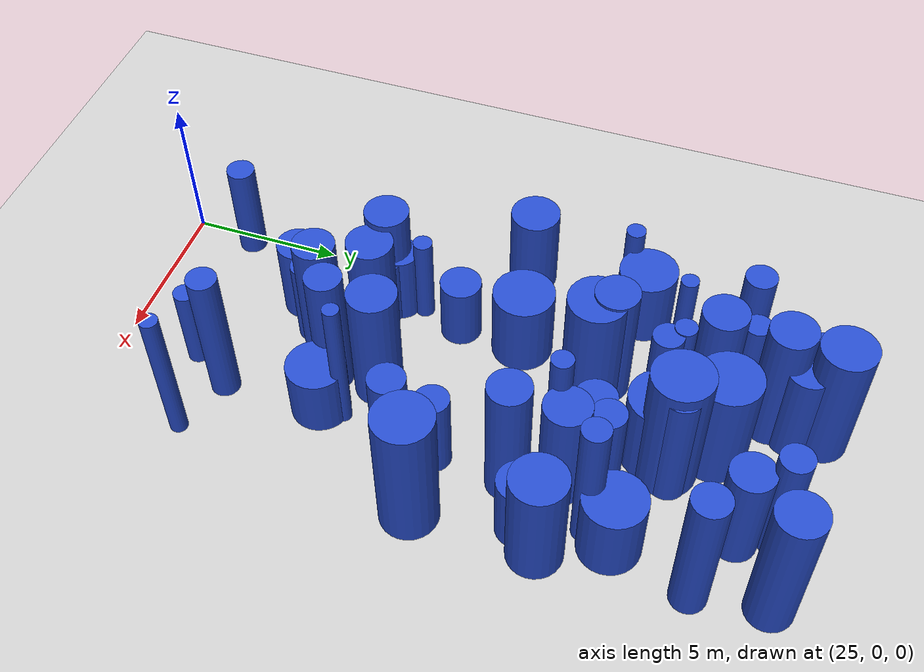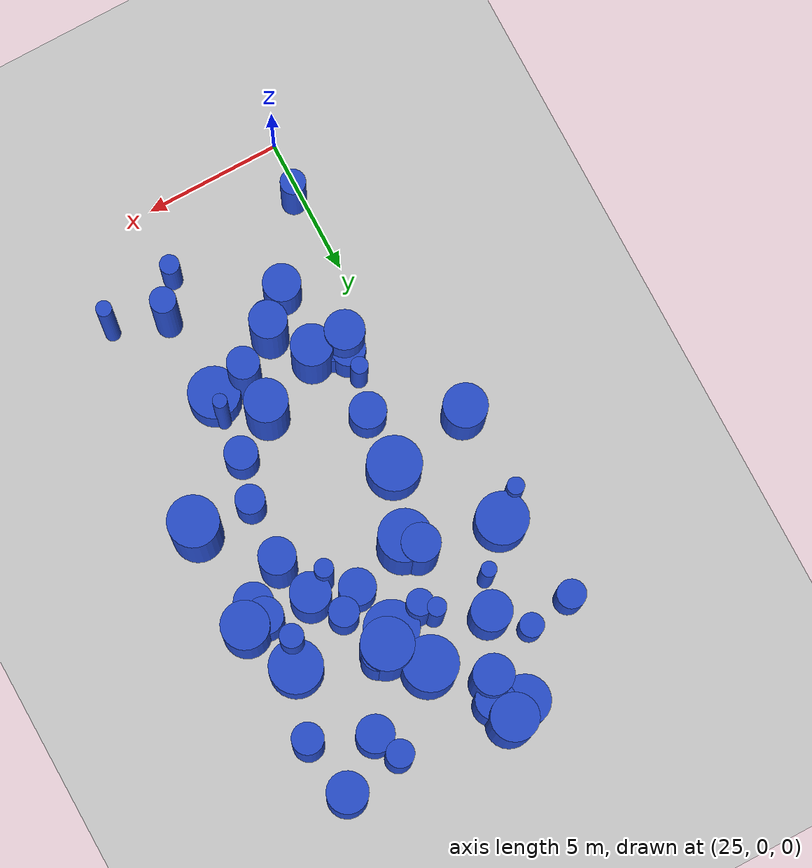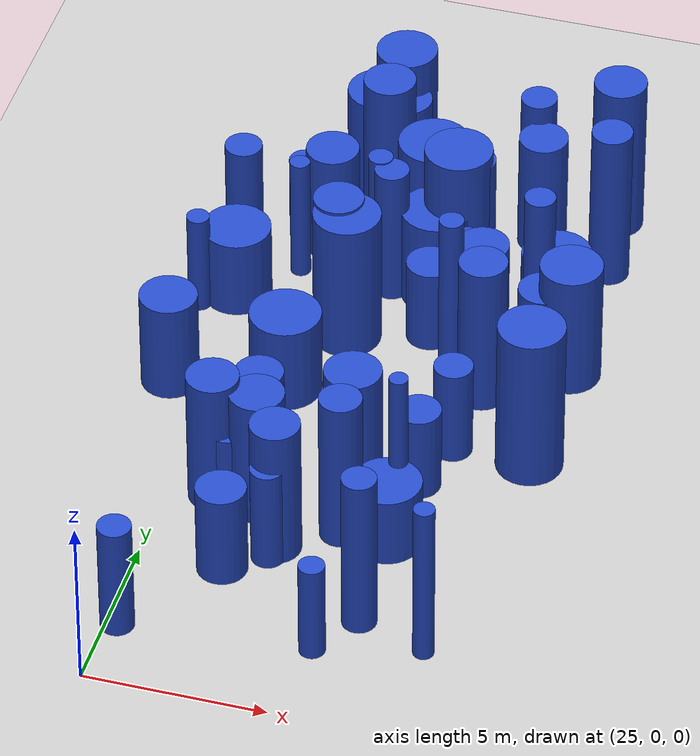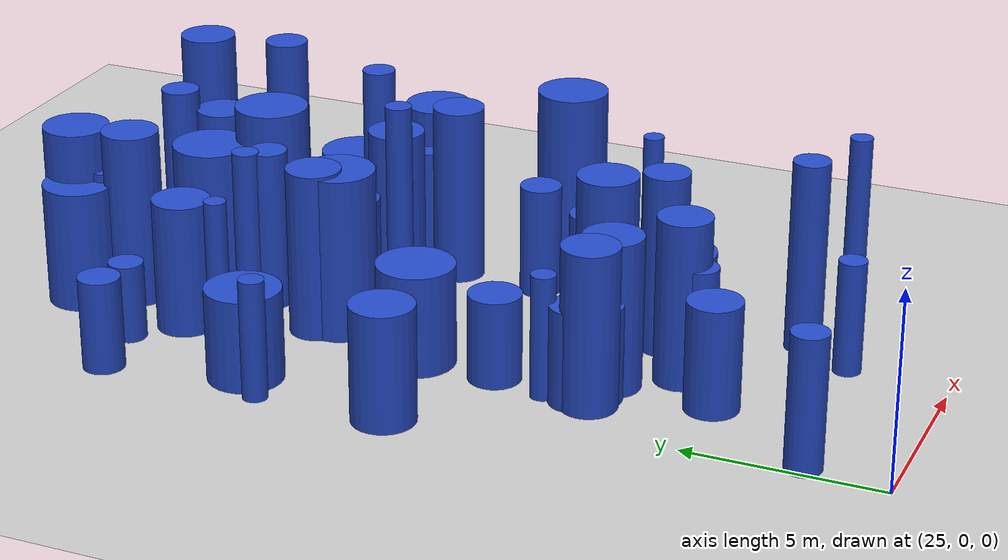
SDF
<sdf version="1.6">
 <world name="default">
  <model name="ground_plane">
   <static>1</static>
   <link name="link">
    <collision name="collision">
     <geometry><plane><normal>0 0 1</normal><size>100 100</size></plane></geometry>
     <surface><friction><ode><mu>100</mu><mu2>50</mu2></ode></friction></surface>
    </collision>
    <visual name="visual">
     <cast_shadows>0</cast_shadows>
     <geometry><plane><normal>0 0 1</normal><size>100 100</size></plane></geometry>
     <material>
      <script><uri>file://media/materials/scripts/gazebo.material</uri><name>Gazebo/Grey</name></script>
     </material>
    </visual>
   </link>
  </model>
  <model name="6">
   <static>0</static>
   <link name="link">
    <inertial>
     <mass>2</mass>
     <inertia><ixx>4.21567</ixx><ixy>0</ixy><ixz>0</ixz><iyy>4.21567</iyy><iyz>0</iyz><izz>0.18322</izz></inertia>
    </inertial>
    <collision name="collision">
     <geometry><cylinder><length>4.97437</length><radius>0.428042</radius></cylinder></geometry>
     <surface><contact><collide_without_contact>1</collide_without_contact></contact></surface>
    </collision>
    <visual name="visual">
     <geometry><cylinder><length>4.97437</length><radius>0.428042</radius></cylinder></geometry>
     <material>
      <script><uri>file://media/materials/scripts/gazebo.material</uri><name>Gazebo/Blue</name></script>
     </material>
    </visual>
    <gravity>0</gravity>
   </link>
   <pose>32.8393 16.173 2.48719 0 -0 0</pose>
  </model>
  <model name="12">
   <static>0</static>
   <link name="link">
    <inertial>
     <mass>2</mass>
     <inertia><ixx>2.16856</ixx><ixy>0</ixy><ixz>0</ixz><iyy>2.16856</iyy><iyz>0</iyz><izz>0.502649</izz></inertia>
    </inertial>
    <collision name="collision">
     <geometry><cylinder><length>3.39167</length><radius>0.708978</radius></cylinder></geometry>
     <surface><contact><collide_without_contact>1</collide_without_contact></contact></surface>
    </collision>
    <visual name="visual">
     <geometry><cylinder><length>3.39167</length><radius>0.708978</radius></cylinder></geometry>
     <material>
      <script><uri>file://media/materials/scripts/gazebo.material</uri><name>Gazebo/Blue</name></script>
     </material>
    </visual>
    <gravity>0</gravity>
   </link>
   <pose>27.6973 21.2651 1.69583 0 -0 0</pose>
  </model>
  <model name="16">
   <static>0</static>
   <link name="link">
    <inertial>
     <mass>2</mass>
     <inertia><ixx>1.16291</ixx><ixy>0</ixy><ixz>0</ixz><iyy>1.16291</iyy><iyz>0</iyz><izz>0.875446</izz></inertia>
    </inertial>
    <collision name="collision">
     <geometry><cylinder><length>2.08593</length><radius>0.935653</radius></cylinder></geometry>
     <surface><contact><collide_without_contact>1</collide_without_contact></contact></surface>
    </collision>
    <visual name="visual">
     <geometry><cylinder><length>2.08593</length><radius>0.935653</radius></cylinder></geometry>
     <material>
      <script><uri>file://media/materials/scripts/gazebo.material</uri><name>Gazebo/Blue</name></script>
     </material>
    </visual>
    <gravity>0</gravity>
   </link>
   <pose>31.1404 7.15658 1.04296 0 -0 0</pose>
  </model>
  <model name="23">
   <static>0</static>
   <link name="link">
    <inertial>
     <mass>2</mass>
     <inertia><ixx>2.07027</ixx><ixy>0</ixy><ixz>0</ixz><iyy>2.07027</iyy><iyz>0</iyz><izz>0.208934</izz></inertia>
    </inertial>
    <collision name="collision">
     <geometry><cylinder><length>3.43436</length><radius>0.457093</radius></cylinder></geometry>
     <surface><contact><collide_without_contact>1</collide_without_contact></contact></surface>
    </collision>
    <visual name="visual">
     <geometry><cylinder><length>3.43436</length><radius>0.457093</radius></cylinder></geometry>
     <material>
      <script><uri>file://media/materials/scripts/gazebo.material</uri><name>Gazebo/Blue</name></script>
     </material>
    </visual>
    <gravity>0</gravity>
   </link>
   <pose>25.3111 2.1227 1.71718 0 -0 0</pose>
  </model>
  <model name="26">
   <static>0</static>
   <link name="link">
    <inertial>
     <mass>2</mass>
     <inertia><ixx>1.56501</ixx><ixy>0</ixy><ixz>0</ixz><iyy>1.56501</iyy><iyz>0</iyz><izz>0.284058</izz></inertia>
    </inertial>
    <collision name="collision">
     <geometry><cylinder><length>2.92197</length><radius>0.532971</radius></cylinder></geometry>
     <surface><contact><collide_without_contact>1</collide_without_contact></contact></surface>
    </collision>
    <visual name="visual">
     <geometry><cylinder><length>2.92197</length><radius>0.532971</radius></cylinder></geometry>
     <material>
      <script><uri>file://media/materials/scripts/gazebo.material</uri><name>Gazebo/Blue</name></script>
     </material>
    </visual>
    <gravity>0</gravity>
   </link>
   <pose>31.8249 11.1624 1.46098 0 -0 0</pose>
  </model>
  <model name="28">
   <static>0</static>
   <link name="link">
    <inertial>
     <mass>2</mass>
     <inertia><ixx>2.79456</ixx><ixy>0</ixy><ixz>0</ixz><iyy>2.79456</iyy><iyz>0</iyz><izz>0.744168</izz></inertia>
    </inertial>
    <collision name="collision">
     <geometry><cylinder><length>3.81246</length><radius>0.862652</radius></cylinder></geometry>
     <surface><contact><collide_without_contact>1</collide_without_contact></contact></surface>
    </collision>
    <visual name="visual">
     <geometry><cylinder><length>3.81246</length><radius>0.862652</radius></cylinder></geometry>
     <material>
      <script><uri>file://media/materials/scripts/gazebo.material</uri><name>Gazebo/Blue</name></script>
     </material>
    </visual>
    <gravity>0</gravity>
   </link>
   <pose>34.0348 15.0048 1.90623 0 -0 0</pose>
  </model>
  <model name="37">
   <static>0</static>
   <link name="link">
    <inertial>
     <mass>2</mass>
     <inertia><ixx>1.49639</ixx><ixy>0</ixy><ixz>0</ixz><iyy>1.49639</iyy><iyz>0</iyz><izz>0.93857</izz></inertia>
    </inertial>
    <collision name="collision">
     <geometry><cylinder><length>2.48246</length><radius>0.968798</radius></cylinder></geometry>
     <surface><contact><collide_without_contact>1</collide_without_contact></contact></surface>
    </collision>
    <visual name="visual">
     <geometry><cylinder><length>2.48246</length><radius>0.968798</radius></cylinder></geometry>
     <material>
      <script><uri>file://media/materials/scripts/gazebo.material</uri><name>Gazebo/Blue</name></script>
     </material>
    </visual>
    <gravity>0</gravity>
   </link>
   <pose>33.1347 16.9677 1.24123 0 -0 0</pose>
  </model>
  <model name="40">
   <static>0</static>
   <link name="link">
    <inertial>
     <mass>2</mass>
     <inertia><ixx>3.64768</ixx><ixy>0</ixy><ixz>0</ixz><iyy>3.64768</iyy><iyz>0</iyz><izz>0.726786</izz></inertia>
    </inertial>
    <collision name="collision">
     <geometry><cylinder><length>4.43911</length><radius>0.852518</radius></cylinder></geometry>
     <surface><contact><collide_without_contact>1</collide_without_contact></contact></surface>
    </collision>
    <visual name="visual">
     <geometry><cylinder><length>4.43911</length><radius>0.852518</radius></cylinder></geometry>
     <material>
      <script><uri>file://media/materials/scripts/gazebo.material</uri><name>Gazebo/Blue</name></script>
     </material>
    </visual>
    <gravity>0</gravity>
   </link>
   <pose>27.4642 22.1166 2.21956 0 -0 0</pose>
  </model>
  <model name="47">
   <static>0</static>
   <link name="link">
    <inertial>
     <mass>2</mass>
     <inertia><ixx>3.1155</ixx><ixy>0</ixy><ixz>0</ixz><iyy>3.1155</iyy><iyz>0</iyz><izz>0.511303</izz></inertia>
    </inertial>
    <collision name="collision">
     <geometry><cylinder><length>4.14235</length><radius>0.715055</radius></cylinder></geometry>
     <surface><contact><collide_without_contact>1</collide_without_contact></contact></surface>
    </collision>
    <visual name="visual">
     <geometry><cylinder><length>4.14235</length><radius>0.715055</radius></cylinder></geometry>
     <material>
      <script><uri>file://media/materials/scripts/gazebo.material</uri><name>Gazebo/Blue</name></script>
     </material>
    </visual>
    <gravity>0</gravity>
   </link>
   <pose>26.2492 7.67174 2.07118 0 -0 0</pose>
  </model>
  <model name="66">
   <static>0</static>
   <link name="link">
    <inertial>
     <mass>2</mass>
     <inertia><ixx>1.32349</ixx><ixy>0</ixy><ixz>0</ixz><iyy>1.32349</iyy><iyz>0</iyz><izz>0.364815</izz></inertia>
    </inertial>
    <collision name="collision">
     <geometry><cylinder><length>2.61658</length><radius>0.603999</radius></cylinder></geometry>
     <surface><contact><collide_without_contact>1</collide_without_contact></contact></surface>
    </collision>
    <visual name="visual">
     <geometry><cylinder><length>2.61658</length><radius>0.603999</radius></cylinder></geometry>
     <material>
      <script><uri>file://media/materials/scripts/gazebo.material</uri><name>Gazebo/Blue</name></script>
     </material>
    </visual>
    <gravity>0</gravity>
   </link>
   <pose>31.3296 9.54668 1.30829 0 -0 0</pose>
  </model>
  <model name="77">
   <static>0</static>
   <link name="link">
    <inertial>
     <mass>2</mass>
     <inertia><ixx>3.04826</ixx><ixy>0</ixy><ixz>0</ixz><iyy>3.04826</iyy><iyz>0</iyz><izz>0.228469</izz></inertia>
    </inertial>
    <collision name="collision">
     <geometry><cylinder><length>4.19573</length><radius>0.477984</radius></cylinder></geometry>
     <surface><contact><collide_without_contact>1</collide_without_contact></contact></surface>
    </collision>
    <visual name="visual">
     <geometry><cylinder><length>4.19573</length><radius>0.477984</radius></cylinder></geometry>
     <material>
      <script><uri>file://media/materials/scripts/gazebo.material</uri><name>Gazebo/Blue</name></script>
     </material>
    </visual>
    <gravity>0</gravity>
   </link>
   <pose>28.4299 17.1628 2.09787 0 -0 0</pose>
  </model>
  <model name="90">
   <static>0</static>
   <link name="link">
    <inertial>
     <mass>2</mass>
     <inertia><ixx>2.81916</ixx><ixy>0</ixy><ixz>0</ixz><iyy>2.81916</iyy><iyz>0</iyz><izz>0.532219</izz></inertia>
    </inertial>
    <collision name="collision">
     <geometry><cylinder><length>3.91386</length><radius>0.729533</radius></cylinder></geometry>
     <surface><contact><collide_without_contact>1</collide_without_contact></contact></surface>
    </collision>
    <visual name="visual">
     <geometry><cylinder><length>3.91386</length><radius>0.729533</radius></cylinder></geometry>
     <material>
      <script><uri>file://media/materials/scripts/gazebo.material</uri><name>Gazebo/Blue</name></script>
     </material>
    </visual>
    <gravity>0</gravity>
   </link>
   <pose>31.5458 15.0812 1.95693 0 -0 0</pose>
  </model>
  <model name="104">
   <static>0</static>
   <link name="link">
    <inertial>
     <mass>2</mass>
     <inertia><ixx>1.39177</ixx><ixy>0</ixy><ixz>0</ixz><iyy>1.39177</iyy><iyz>0</iyz><izz>0.899716</izz></inertia>
    </inertial>
    <collision name="collision">
     <geometry><cylinder><length>2.37729</length><radius>0.948534</radius></cylinder></geometry>
     <surface><contact><collide_without_contact>1</collide_without_contact></contact></surface>
    </collision>
    <visual name="visual">
     <geometry><cylinder><length>2.37729</length><radius>0.948534</radius></cylinder></geometry>
     <material>
      <script><uri>file://media/materials/scripts/gazebo.material</uri><name>Gazebo/Blue</name></script>
     </material>
    </visual>
    <gravity>0</gravity>
   </link>
   <pose>24.4132 15.8053 1.18864 0 -0 0</pose>
  </model>
  <model name="109">
   <static>0</static>
   <link name="link">
    <inertial>
     <mass>2</mass>
     <inertia><ixx>1.81505</ixx><ixy>0</ixy><ixz>0</ixz><iyy>1.81505</iyy><iyz>0</iyz><izz>0.637128</izz></inertia>
    </inertial>
    <collision name="collision">
     <geometry><cylinder><length>2.99649</length><radius>0.798203</radius></cylinder></geometry>
     <surface><contact><collide_without_contact>1</collide_without_contact></contact></surface>
    </collision>
    <visual name="visual">
     <geometry><cylinder><length>2.99649</length><radius>0.798203</radius></cylinder></geometry>
     <material>
      <script><uri>file://media/materials/scripts/gazebo.material</uri><name>Gazebo/Blue</name></script>
     </material>
    </visual>
    <gravity>0</gravity>
   </link>
   <pose>23.7206 11.8082 1.49824 0 -0 0</pose>
  </model>
  <model name="116">
   <static>0</static>
   <link name="link">
    <inertial>
     <mass>2</mass>
     <inertia><ixx>1.63259</ixx><ixy>0</ixy><ixz>0</ixz><iyy>1.63259</iyy><iyz>0</iyz><izz>0.973707</izz></inertia>
    </inertial>
    <collision name="collision">
     <geometry><cylinder><length>2.62191</length><radius>0.986766</radius></cylinder></geometry>
     <surface><contact><collide_without_contact>1</collide_without_contact></contact></surface>
    </collision>
    <visual name="visual">
     <geometry><cylinder><length>2.62191</length><radius>0.986766</radius></cylinder></geometry>
     <material>
      <script><uri>file://media/materials/scripts/gazebo.material</uri><name>Gazebo/Blue</name></script>
     </material>
    </visual>
    <gravity>0</gravity>
   </link>
   <pose>26.8154 12.3832 1.31095 0 -0 0</pose>
  </model>
  <model name="120">
   <static>0</static>
   <link name="link">
    <inertial>
     <mass>2</mass>
     <inertia><ixx>1.23799</ixx><ixy>0</ixy><ixz>0</ixz><iyy>1.23799</iyy><iyz>0</iyz><izz>0.430058</izz></inertia>
    </inertial>
    <collision name="collision">
     <geometry><cylinder><length>2.47745</length><radius>0.655788</radius></cylinder></geometry>
     <surface><contact><collide_without_contact>1</collide_without_contact></contact></surface>
    </collision>
    <visual name="visual">
     <geometry><cylinder><length>2.47745</length><radius>0.655788</radius></cylinder></geometry>
     <material>
      <script><uri>file://media/materials/scripts/gazebo.material</uri><name>Gazebo/Blue</name></script>
     </material>
    </visual>
    <gravity>0</gravity>
   </link>
   <pose>26.6657 7.65278 1.23873 0 -0 0</pose>
  </model>
  <model name="123">
   <static>0</static>
   <link name="link">
    <inertial>
     <mass>2</mass>
     <inertia><ixx>1.70137</ixx><ixy>0</ixy><ixz>0</ixz><iyy>1.70137</iyy><iyz>0</iyz><izz>0.21026</izz></inertia>
    </inertial>
    <collision name="collision">
     <geometry><cylinder><length>3.09474</length><radius>0.458541</radius></cylinder></geometry>
     <surface><contact><collide_without_contact>1</collide_without_contact></contact></surface>
    </collision>
    <visual name="visual">
     <geometry><cylinder><length>3.09474</length><radius>0.458541</radius></cylinder></geometry>
     <material>
      <script><uri>file://media/materials/scripts/gazebo.material</uri><name>Gazebo/Blue</name></script>
     </material>
    </visual>
    <gravity>0</gravity>
   </link>
   <pose>28.322 5.685 1.54737 0 -0 0</pose>
  </model>
  <model name="125">
   <static>0</static>
   <link name="link">
    <inertial>
     <mass>2</mass>
     <inertia><ixx>3.0469</ixx><ixy>0</ixy><ixz>0</ixz><iyy>3.0469</iyy><iyz>0</iyz><izz>0.117307</izz></inertia>
    </inertial>
    <collision name="collision">
     <geometry><cylinder><length>4.23432</length><radius>0.342501</radius></cylinder></geometry>
     <surface><contact><collide_without_contact>1</collide_without_contact></contact></surface>
    </collision>
    <visual name="visual">
     <geometry><cylinder><length>4.23432</length><radius>0.342501</radius></cylinder></geometry>
     <material>
      <script><uri>file://media/materials/scripts/gazebo.material</uri><name>Gazebo/Blue</name></script>
     </material>
    </visual>
    <gravity>0</gravity>
   </link>
   <pose>27.9986 17.5734 2.11716 0 -0 0</pose>
  </model>
  <model name="138">
   <static>0</static>
   <link name="link">
    <inertial>
     <mass>2</mass>
     <inertia><ixx>2.25397</ixx><ixy>0</ixy><ixz>0</ixz><iyy>2.25397</iyy><iyz>0</iyz><izz>0.541062</izz></inertia>
    </inertial>
    <collision name="collision">
     <geometry><cylinder><length>3.44973</length><radius>0.735569</radius></cylinder></geometry>
     <surface><contact><collide_without_contact>1</collide_without_contact></contact></surface>
    </collision>
    <visual name="visual">
     <geometry><cylinder><length>3.44973</length><radius>0.735569</radius></cylinder></geometry>
     <material>
      <script><uri>file://media/materials/scripts/gazebo.material</uri><name>Gazebo/Blue</name></script>
     </material>
    </visual>
    <gravity>0</gravity>
   </link>
   <pose>26.3564 18.5234 1.72486 0 -0 0</pose>
  </model>
  <model name="166">
   <static>0</static>
   <link name="link">
    <inertial>
     <mass>2</mass>
     <inertia><ixx>1.54037</ixx><ixy>0</ixy><ixz>0</ixz><iyy>1.54037</iyy><iyz>0</iyz><izz>0.465652</izz></inertia>
    </inertial>
    <collision name="collision">
     <geometry><cylinder><length>2.80094</length><radius>0.682387</radius></cylinder></geometry>
     <surface><contact><collide_without_contact>1</collide_without_contact></contact></surface>
    </collision>
    <visual name="visual">
     <geometry><cylinder><length>2.80094</length><radius>0.682387</radius></cylinder></geometry>
     <material>
      <script><uri>file://media/materials/scripts/gazebo.material</uri><name>Gazebo/Blue</name></script>
     </material>
    </visual>
    <gravity>0</gravity>
   </link>
   <pose>27.2829 4.96384 1.40047 0 -0 0</pose>
  </model>
  <model name="169">
   <static>0</static>
   <link name="link">
    <inertial>
     <mass>2</mass>
     <inertia><ixx>1.07216</ixx><ixy>0</ixy><ixz>0</ixz><iyy>1.07216</iyy><iyz>0</iyz><izz>0.445485</izz></inertia>
    </inertial>
    <collision name="collision">
     <geometry><cylinder><length>2.25755</length><radius>0.667447</radius></cylinder></geometry>
     <surface><contact><collide_without_contact>1</collide_without_contact></contact></surface>
    </collision>
    <visual name="visual">
     <geometry><cylinder><length>2.25755</length><radius>0.667447</radius></cylinder></geometry>
     <material>
      <script><uri>file://media/materials/scripts/gazebo.material</uri><name>Gazebo/Blue</name></script>
     </material>
    </visual>
    <gravity>0</gravity>
   </link>
   <pose>26.7186 10.2668 1.12877 0 -0 0</pose>
  </model>
  <model name="170">
   <static>0</static>
   <link name="link">
    <inertial>
     <mass>2</mass>
     <inertia><ixx>3.00671</ixx><ixy>0</ixy><ixz>0</ixz><iyy>3.00671</iyy><iyz>0</iyz><izz>0.251425</izz></inertia>
    </inertial>
    <collision name="collision">
     <geometry><cylinder><length>4.15764</length><radius>0.501423</radius></cylinder></geometry>
     <surface><contact><collide_without_contact>1</collide_without_contact></contact></surface>
    </collision>
    <visual name="visual">
     <geometry><cylinder><length>4.15764</length><radius>0.501423</radius></cylinder></geometry>
     <material>
      <script><uri>file://media/materials/scripts/gazebo.material</uri><name>Gazebo/Blue</name></script>
     </material>
    </visual>
    <gravity>0</gravity>
   </link>
   <pose>31.4526 21.3588 2.07882 0 -0 0</pose>
  </model>
  <model name="171">
   <static>0</static>
   <link name="link">
    <inertial>
     <mass>2</mass>
     <inertia><ixx>1.15098</ixx><ixy>0</ixy><ixz>0</ixz><iyy>1.15098</iyy><iyz>0</iyz><izz>0.170705</izz></inertia>
    </inertial>
    <collision name="collision">
     <geometry><cylinder><length>2.52859</length><radius>0.413164</radius></cylinder></geometry>
     <surface><contact><collide_without_contact>1</collide_without_contact></contact></surface>
    </collision>
    <visual name="visual">
     <geometry><cylinder><length>2.52859</length><radius>0.413164</radius></cylinder></geometry>
     <material>
      <script><uri>file://media/materials/scripts/gazebo.material</uri><name>Gazebo/Blue</name></script>
     </material>
    </visual>
    <gravity>0</gravity>
   </link>
   <pose>24.0099 11.86 1.2643 0 -0 0</pose>
  </model>
  <model name="173">
   <static>0</static>
   <link name="link">
    <inertial>
     <mass>2</mass>
     <inertia><ixx>1.72707</ixx><ixy>0</ixy><ixz>0</ixz><iyy>1.72707</iyy><iyz>0</iyz><izz>0.295465</izz></inertia>
    </inertial>
    <collision name="collision">
     <geometry><cylinder><length>3.07832</length><radius>0.543567</radius></cylinder></geometry>
     <surface><contact><collide_without_contact>1</collide_without_contact></contact></surface>
    </collision>
    <visual name="visual">
     <geometry><cylinder><length>3.07832</length><radius>0.543567</radius></cylinder></geometry>
     <material>
      <script><uri>file://media/materials/scripts/gazebo.material</uri><name>Gazebo/Blue</name></script>
     </material>
    </visual>
    <gravity>0</gravity>
   </link>
   <pose>30.8153 16.1381 1.53916 0 -0 0</pose>
  </model>
  <model name="182">
   <static>0</static>
   <link name="link">
    <inertial>
     <mass>2</mass>
     <inertia><ixx>1.26185</ixx><ixy>0</ixy><ixz>0</ixz><iyy>1.26185</iyy><iyz>0</iyz><izz>0.388588</izz></inertia>
    </inertial>
    <collision name="collision">
     <geometry><cylinder><length>2.53087</length><radius>0.623369</radius></cylinder></geometry>
     <surface><contact><collide_without_contact>1</collide_without_contact></contact></surface>
    </collision>
    <visual name="visual">
     <geometry><cylinder><length>2.53087</length><radius>0.623369</radius></cylinder></geometry>
     <material>
      <script><uri>file://media/materials/scripts/gazebo.material</uri><name>Gazebo/Blue</name></script>
     </material>
    </visual>
    <gravity>0</gravity>
   </link>
   <pose>26.319 8.06985 1.26544 0 -0 0</pose>
  </model>
  <model name="197">
   <static>0</static>
   <link name="link">
    <inertial>
     <mass>2</mass>
     <inertia><ixx>4.20898</ixx><ixy>0</ixy><ixz>0</ixz><iyy>4.20898</iyy><iyz>0</iyz><izz>0.835806</izz></inertia>
    </inertial>
    <collision name="collision">
     <geometry><cylinder><length>4.76933</length><radius>0.914225</radius></cylinder></geometry>
     <surface><contact><collide_without_contact>1</collide_without_contact></contact></surface>
    </collision>
    <visual name="visual">
     <geometry><cylinder><length>4.76933</length><radius>0.914225</radius></cylinder></geometry>
     <material>
      <script><uri>file://media/materials/scripts/gazebo.material</uri><name>Gazebo/Blue</name></script>
     </material>
    </visual>
    <gravity>0</gravity>
   </link>
   <pose>33.9429 11.1444 2.38466 0 -0 0</pose>
  </model>
  <model name="203">
   <static>0</static>
   <link name="link">
    <inertial>
     <mass>2</mass>
     <inertia><ixx>4.30953</ixx><ixy>0</ixy><ixz>0</ixz><iyy>4.30953</iyy><iyz>0</iyz><izz>0.540901</izz></inertia>
    </inertial>
    <collision name="collision">
     <geometry><cylinder><length>4.92285</length><radius>0.73546</radius></cylinder></geometry>
     <surface><contact><collide_without_contact>1</collide_without_contact></contact></surface>
    </collision>
    <visual name="visual">
     <geometry><cylinder><length>4.92285</length><radius>0.73546</radius></cylinder></geometry>
     <material>
      <script><uri>file://media/materials/scripts/gazebo.material</uri><name>Gazebo/Blue</name></script>
     </material>
    </visual>
    <gravity>0</gravity>
   </link>
   <pose>33.6597 21.699 2.46143 0 -0 0</pose>
  </model>
  <model name="211">
   <static>0</static>
   <link name="link">
    <inertial>
     <mass>2</mass>
     <inertia><ixx>1.9057</ixx><ixy>0</ixy><ixz>0</ixz><iyy>1.9057</iyy><iyz>0</iyz><izz>0.986749</izz></inertia>
    </inertial>
    <collision name="collision">
     <geometry><cylinder><length>2.91101</length><radius>0.993353</radius></cylinder></geometry>
     <surface><contact><collide_without_contact>1</collide_without_contact></contact></surface>
    </collision>
    <visual name="visual">
     <geometry><cylinder><length>2.91101</length><radius>0.993353</radius></cylinder></geometry>
     <material>
      <script><uri>file://media/materials/scripts/gazebo.material</uri><name>Gazebo/Blue</name></script>
     </material>
    </visual>
    <gravity>0</gravity>
   </link>
   <pose>29.6267 17.389 1.4555 0 -0 0</pose>
  </model>
  <model name="230">
   <static>0</static>
   <link name="link">
    <inertial>
     <mass>2</mass>
     <inertia>
      <ixx>2.46786</ixx>
      <ixy>0</ixy>
      <ixz>0</ixz>
      <iyy>2.46786</iyy>
      <iyz>0</iyz>
      <izz>0.0789834</izz>
     </inertia>
    </inertial>
    <collision name="collision">
     <geometry><cylinder><length>3.8171</length><radius>0.28104</radius></cylinder></geometry>
     <surface><contact><collide_without_contact>1</collide_without_contact></contact></surface>
    </collision>
    <visual name="visual">
     <geometry><cylinder><length>3.8171</length><radius>0.28104</radius></cylinder></geometry>
     <material>
      <script><uri>file://media/materials/scripts/gazebo.material</uri><name>Gazebo/Blue</name></script>
     </material>
    </visual>
    <gravity>0</gravity>
   </link>
   <pose>25.7942 17.2502 1.90855 0 -0 0</pose>
  </model>
  <model name="247">
   <static>0</static>
   <link name="link">
    <inertial>
     <mass>2</mass>
     <inertia><ixx>4.09541</ixx><ixy>0</ixy><ixz>0</ixz><iyy>4.09541</iyy><iyz>0</iyz><izz>0.884634</izz></inertia>
    </inertial>
    <collision name="collision">
     <geometry><cylinder><length>4.68172</length><radius>0.94055</radius></cylinder></geometry>
     <surface><contact><collide_without_contact>1</collide_without_contact></contact></surface>
    </collision>
    <visual name="visual">
     <geometry><cylinder><length>4.68172</length><radius>0.94055</radius></cylinder></geometry>
     <material>
      <script><uri>file://media/materials/scripts/gazebo.material</uri><name>Gazebo/Blue</name></script>
     </material>
    </visual>
    <gravity>0</gravity>
   </link>
   <pose>30.1005 17.9169 2.34086 0 -0 0</pose>
  </model>
  <model name="249">
   <static>0</static>
   <link name="link">
    <inertial>
     <mass>2</mass>
     <inertia><ixx>3.49119</ixx><ixy>0</ixy><ixz>0</ixz><iyy>3.49119</iyy><iyz>0</iyz><izz>0.872611</izz></inertia>
    </inertial>
    <collision name="collision">
     <geometry><cylinder><length>4.28127</length><radius>0.934137</radius></cylinder></geometry>
     <surface><contact><collide_without_contact>1</collide_without_contact></contact></surface>
    </collision>
    <visual name="visual">
     <geometry><cylinder><length>4.28127</length><radius>0.934137</radius></cylinder></geometry>
     <material>
      <script><uri>file://media/materials/scripts/gazebo.material</uri><name>Gazebo/Blue</name></script>
     </material>
    </visual>
    <gravity>0</gravity>
   </link>
   <pose>27.8081 14.9129 2.14064 0 -0 0</pose>
  </model>
  <model name="257">
   <static>0</static>
   <link name="link">
    <inertial>
     <mass>2</mass>
     <inertia><ixx>4.22926</ixx><ixy>0</ixy><ixz>0</ixz><iyy>4.22926</iyy><iyz>0</iyz><izz>0.319353</izz></inertia>
    </inertial>
    <collision name="collision">
     <geometry><cylinder><length>4.94141</length><radius>0.565113</radius></cylinder></geometry>
     <surface><contact><collide_without_contact>1</collide_without_contact></contact></surface>
    </collision>
    <visual name="visual">
     <geometry><cylinder><length>4.94141</length><radius>0.565113</radius></cylinder></geometry>
     <material>
      <script><uri>file://media/materials/scripts/gazebo.material</uri><name>Gazebo/Blue</name></script>
     </material>
    </visual>
    <gravity>0</gravity>
   </link>
   <pose>33.9902 19.4772 2.4707 0 -0 0</pose>
  </model>
  <model name="266">
   <static>0</static>
   <link name="link">
    <inertial>
     <mass>2</mass>
     <inertia><ixx>3.73418</ixx><ixy>0</ixy><ixz>0</ixz><iyy>3.73418</iyy><iyz>0</iyz><izz>0.52883</izz></inertia>
    </inertial>
    <collision name="collision">
     <geometry><cylinder><length>4.56274</length><radius>0.727207</radius></cylinder></geometry>
     <surface><contact><collide_without_contact>1</collide_without_contact></contact></surface>
    </collision>
    <visual name="visual">
     <geometry><cylinder><length>4.56274</length><radius>0.727207</radius></cylinder></geometry>
     <material>
      <script><uri>file://media/materials/scripts/gazebo.material</uri><name>Gazebo/Blue</name></script>
     </material>
    </visual>
    <gravity>0</gravity>
   </link>
   <pose>27.4177 20.5212 2.28137 0 -0 0</pose>
  </model>
  <model name="267">
   <static>0</static>
   <link name="link">
    <inertial>
     <mass>2</mass>
     <inertia>
      <ixx>1.63702</ixx>
      <ixy>0</ixy>
      <ixz>0</ixz>
      <iyy>1.63702</iyy>
      <iyz>0</iyz>
      <izz>0.0996651</izz>
     </inertia>
    </inertial>
    <collision name="collision">
     <geometry><cylinder><length>3.08595</length><radius>0.315698</radius></cylinder></geometry>
     <surface><contact><collide_without_contact>1</collide_without_contact></contact></surface>
    </collision>
    <visual name="visual">
     <geometry><cylinder><length>3.08595</length><radius>0.315698</radius></cylinder></geometry>
     <material>
      <script><uri>file://media/materials/scripts/gazebo.material</uri><name>Gazebo/Blue</name></script>
     </material>
    </visual>
    <gravity>0</gravity>
   </link>
   <pose>23.5385 15.0976 1.54298 0 -0 0</pose>
  </model>
  <model name="278">
   <static>0</static>
   <link name="link">
    <inertial>
     <mass>2</mass>
     <inertia><ixx>1.09061</ixx><ixy>0</ixy><ixz>0</ixz><iyy>1.09061</iyy><iyz>0</iyz><izz>0.275304</izz></inertia>
    </inertial>
    <collision name="collision">
     <geometry><cylinder><length>2.39118</length><radius>0.524694</radius></cylinder></geometry>
     <surface><contact><collide_without_contact>1</collide_without_contact></contact></surface>
    </collision>
    <visual name="visual">
     <geometry><cylinder><length>2.39118</length><radius>0.524694</radius></cylinder></geometry>
     <material>
      <script><uri>file://media/materials/scripts/gazebo.material</uri><name>Gazebo/Blue</name></script>
     </material>
    </visual>
    <gravity>0</gravity>
   </link>
   <pose>23.5655 19.2494 1.19559 0 -0 0</pose>
  </model>
  <model name="282">
   <static>0</static>
   <link name="link">
    <inertial>
     <mass>2</mass>
     <inertia><ixx>1.32103</ixx><ixy>0</ixy><ixz>0</ixz><iyy>1.32103</iyy><iyz>0</iyz><izz>0.445488</izz></inertia>
    </inertial>
    <collision name="collision">
     <geometry><cylinder><length>2.56704</length><radius>0.667449</radius></cylinder></geometry>
     <surface><contact><collide_without_contact>1</collide_without_contact></contact></surface>
    </collision>
    <visual name="visual">
     <geometry><cylinder><length>2.56704</length><radius>0.667449</radius></cylinder></geometry>
     <material>
      <script><uri>file://media/materials/scripts/gazebo.material</uri><name>Gazebo/Blue</name></script>
     </material>
    </visual>
    <gravity>0</gravity>
   </link>
   <pose>29.9761 15.5556 1.28352 0 -0 0</pose>
  </model>
  <model name="287">
   <static>0</static>
   <link name="link">
    <inertial>
     <mass>2</mass>
     <inertia><ixx>1.61057</ixx><ixy>0</ixy><ixz>0</ixz><iyy>1.61057</iyy><iyz>0</iyz><izz>0.461091</izz></inertia>
    </inertial>
    <collision name="collision">
     <geometry><cylinder><length>2.87753</length><radius>0.679037</radius></cylinder></geometry>
     <surface><contact><collide_without_contact>1</collide_without_contact></contact></surface>
    </collision>
    <visual name="visual">
     <geometry><cylinder><length>2.87753</length><radius>0.679037</radius></cylinder></geometry>
     <material>
      <script><uri>file://media/materials/scripts/gazebo.material</uri><name>Gazebo/Blue</name></script>
     </material>
    </visual>
    <gravity>0</gravity>
   </link>
   <pose>33.2756 14.9483 1.43876 0 -0 0</pose>
  </model>
  <model name="301">
   <static>0</static>
   <link name="link">
    <inertial>
     <mass>2</mass>
     <inertia><ixx>3.26287</ixx><ixy>0</ixy><ixz>0</ixz><iyy>3.26287</iyy><iyz>0</iyz><izz>0.348372</izz></inertia>
    </inertial>
    <collision name="collision">
     <geometry><cylinder><length>4.30489</length><radius>0.590231</radius></cylinder></geometry>
     <surface><contact><collide_without_contact>1</collide_without_contact></contact></surface>
    </collision>
    <visual name="visual">
     <geometry><cylinder><length>4.30489</length><radius>0.590231</radius></cylinder></geometry>
     <material>
      <script><uri>file://media/materials/scripts/gazebo.material</uri><name>Gazebo/Blue</name></script>
     </material>
    </visual>
    <gravity>0</gravity>
   </link>
   <pose>30.5093 18.0576 2.15245 0 -0 0</pose>
  </model>
  <model name="314">
   <static>0</static>
   <link name="link">
    <inertial>
     <mass>2</mass>
     <inertia><ixx>1.24856</ixx><ixy>0</ixy><ixz>0</ixz><iyy>1.24856</iyy><iyz>0</iyz><izz>0.506634</izz></inertia>
    </inertial>
    <collision name="collision">
     <geometry><cylinder><length>2.44366</length><radius>0.711782</radius></cylinder></geometry>
     <surface><contact><collide_without_contact>1</collide_without_contact></contact></surface>
    </collision>
    <visual name="visual">
     <geometry><cylinder><length>2.44366</length><radius>0.711782</radius></cylinder></geometry>
     <material>
      <script><uri>file://media/materials/scripts/gazebo.material</uri><name>Gazebo/Blue</name></script>
     </material>
    </visual>
    <gravity>0</gravity>
   </link>
   <pose>33.3776 14.3204 1.22183 0 -0 0</pose>
  </model>
  <model name="318">
   <static>0</static>
   <link name="link">
    <inertial>
     <mass>2</mass>
     <inertia><ixx>2.85732</ixx><ixy>0</ixy><ixz>0</ixz><iyy>2.85732</iyy><iyz>0</iyz><izz>0.563059</izz></inertia>
    </inertial>
    <collision name="collision">
     <geometry><cylinder><length>3.93125</length><radius>0.750372</radius></cylinder></geometry>
     <surface><contact><collide_without_contact>1</collide_without_contact></contact></surface>
    </collision>
    <visual name="visual">
     <geometry><cylinder><length>3.93125</length><radius>0.750372</radius></cylinder></geometry>
     <material>
      <script><uri>file://media/materials/scripts/gazebo.material</uri><name>Gazebo/Blue</name></script>
     </material>
    </visual>
    <gravity>0</gravity>
   </link>
   <pose>27.4795 7.57021 1.96562 0 -0 0</pose>
  </model>
  <model name="321">
   <static>0</static>
   <link name="link">
    <inertial>
     <mass>2</mass>
     <inertia><ixx>2.0922</ixx><ixy>0</ixy><ixz>0</ixz><iyy>2.0922</iyy><iyz>0</iyz><izz>0.826874</izz></inertia>
    </inertial>
    <collision name="collision">
     <geometry><cylinder><length>3.17373</length><radius>0.909326</radius></cylinder></geometry>
     <surface><contact><collide_without_contact>1</collide_without_contact></contact></surface>
    </collision>
    <visual name="visual">
     <geometry><cylinder><length>3.17373</length><radius>0.909326</radius></cylinder></geometry>
     <material>
      <script><uri>file://media/materials/scripts/gazebo.material</uri><name>Gazebo/Blue</name></script>
     </material>
    </visual>
    <gravity>0</gravity>
   </link>
   <pose>26.7999 21.7413 1.58687 0 -0 0</pose>
  </model>
  <model name="349">
   <static>0</static>
   <link name="link">
    <inertial>
     <mass>2</mass>
     <inertia>
      <ixx>4.13059</ixx>
      <ixy>0</ixy>
      <ixz>0</ixz>
      <iyy>4.13059</iyy>
      <iyz>0</iyz>
      <izz>0.0808818</izz>
     </inertia>
    </inertial>
    <collision name="collision">
     <geometry><cylinder><length>4.95388</length><radius>0.284397</radius></cylinder></geometry>
     <surface><contact><collide_without_contact>1</collide_without_contact></contact></surface>
    </collision>
    <visual name="visual">
     <geometry><cylinder><length>4.95388</length><radius>0.284397</radius></cylinder></geometry>
     <material>
      <script><uri>file://media/materials/scripts/gazebo.material</uri><name>Gazebo/Blue</name></script>
     </material>
    </visual>
    <gravity>0</gravity>
   </link>
   <pose>33.2173 3.26969 2.47694 0 -0 0</pose>
  </model>
  <model name="356">
   <static>0</static>
   <link name="link">
    <inertial>
     <mass>2</mass>
     <inertia><ixx>2.91476</ixx><ixy>0</ixy><ixz>0</ixz><iyy>2.91476</iyy><iyz>0</iyz><izz>0.985713</izz></inertia>
    </inertial>
    <collision name="collision">
     <geometry><cylinder><length>3.81201</length><radius>0.992831</radius></cylinder></geometry>
     <surface><contact><collide_without_contact>1</collide_without_contact></contact></surface>
    </collision>
    <visual name="visual">
     <geometry><cylinder><length>3.81201</length><radius>0.992831</radius></cylinder></geometry>
     <material>
      <script><uri>file://media/materials/scripts/gazebo.material</uri><name>Gazebo/Blue</name></script>
     </material>
    </visual>
    <gravity>0</gravity>
   </link>
   <pose>29.0769 19.1436 1.906 0 -0 0</pose>
  </model>
  <model name="379">
   <static>0</static>
   <link name="link">
    <inertial>
     <mass>2</mass>
     <inertia><ixx>1.73437</ixx><ixy>0</ixy><ixz>0</ixz><iyy>1.73437</iyy><iyz>0</iyz><izz>0.096315</izz></inertia>
    </inertial>
    <collision name="collision">
     <geometry><cylinder><length>3.18077</length><radius>0.310347</radius></cylinder></geometry>
     <surface><contact><collide_without_contact>1</collide_without_contact></contact></surface>
    </collision>
    <visual name="visual">
     <geometry><cylinder><length>3.18077</length><radius>0.310347</radius></cylinder></geometry>
     <material>
      <script><uri>file://media/materials/scripts/gazebo.material</uri><name>Gazebo/Blue</name></script>
     </material>
    </visual>
    <gravity>0</gravity>
   </link>
   <pose>26.3048 8.86108 1.59038 0 -0 0</pose>
  </model>
  <model name="394">
   <static>0</static>
   <link name="link">
    <inertial>
     <mass>2</mass>
     <inertia><ixx>3.28323</ixx><ixy>0</ixy><ixz>0</ixz><iyy>3.28323</iyy><iyz>0</iyz><izz>0.459456</izz></inertia>
    </inertial>
    <collision name="collision">
     <geometry><cylinder><length>4.28031</length><radius>0.677831</radius></cylinder></geometry>
     <surface><contact><collide_without_contact>1</collide_without_contact></contact></surface>
    </collision>
    <visual name="visual">
     <geometry><cylinder><length>4.28031</length><radius>0.677831</radius></cylinder></geometry>
     <material>
      <script><uri>file://media/materials/scripts/gazebo.material</uri><name>Gazebo/Blue</name></script>
     </material>
    </visual>
    <gravity>0</gravity>
   </link>
   <pose>28.4095 6.13191 2.14015 0 -0 0</pose>
  </model>
  <model name="397">
   <static>0</static>
   <link name="link">
    <inertial>
     <mass>2</mass>
     <inertia><ixx>4.15926</ixx><ixy>0</ixy><ixz>0</ixz><iyy>4.15926</iyy><iyz>0</iyz><izz>0.066545</izz></inertia>
    </inertial>
    <collision name="collision">
     <geometry><cylinder><length>4.97553</length><radius>0.257963</radius></cylinder></geometry>
     <surface><contact><collide_without_contact>1</collide_without_contact></contact></surface>
    </collision>
    <visual name="visual">
     <geometry><cylinder><length>4.97553</length><radius>0.257963</radius></cylinder></geometry>
     <material>
      <script><uri>file://media/materials/scripts/gazebo.material</uri><name>Gazebo/Blue</name></script>
     </material>
    </visual>
    <gravity>0</gravity>
   </link>
   <pose>31.22 7.95374 2.48777 0 -0 0</pose>
  </model>
  <model name="399">
   <static>0</static>
   <link name="link">
    <inertial>
     <mass>2</mass>
     <inertia><ixx>3.8198</ixx><ixy>0</ixy><ixz>0</ixz><iyy>3.8198</iyy><iyz>0</iyz><izz>0.441979</izz></inertia>
    </inertial>
    <collision name="collision">
     <geometry><cylinder><length>4.64681</length><radius>0.664815</radius></cylinder></geometry>
     <surface><contact><collide_without_contact>1</collide_without_contact></contact></surface>
    </collision>
    <visual name="visual">
     <geometry><cylinder><length>4.64681</length><radius>0.664815</radius></cylinder></geometry>
     <material>
      <script><uri>file://media/materials/scripts/gazebo.material</uri><name>Gazebo/Blue</name></script>
     </material>
    </visual>
    <gravity>0</gravity>
   </link>
   <pose>31.9839 13.5159 2.32341 0 -0 0</pose>
  </model>
  <model name="405">
   <static>0</static>
   <link name="link">
    <inertial>
     <mass>2</mass>
     <inertia><ixx>4.07334</ixx><ixy>0</ixy><ixz>0</ixz><iyy>4.07334</iyy><iyz>0</iyz><izz>0.11654</izz></inertia>
    </inertial>
    <collision name="collision">
     <geometry><cylinder><length>4.9082</length><radius>0.34138</radius></cylinder></geometry>
     <surface><contact><collide_without_contact>1</collide_without_contact></contact></surface>
    </collision>
    <visual name="visual">
     <geometry><cylinder><length>4.9082</length><radius>0.34138</radius></cylinder></geometry>
     <material>
      <script><uri>file://media/materials/scripts/gazebo.material</uri><name>Gazebo/Blue</name></script>
     </material>
    </visual>
    <gravity>0</gravity>
   </link>
   <pose>30.7955 14.6592 2.4541 0 -0 0</pose>
  </model>
  <model name="408">
   <static>0</static>
   <link name="link">
    <inertial>
     <mass>2</mass>
     <inertia><ixx>3.81669</ixx><ixy>0</ixy><ixz>0</ixz><iyy>3.81669</iyy><iyz>0</iyz><izz>0.336877</izz></inertia>
    </inertial>
    <collision name="collision">
     <geometry><cylinder><length>4.67863</length><radius>0.580411</radius></cylinder></geometry>
     <surface><contact><collide_without_contact>1</collide_without_contact></contact></surface>
    </collision>
    <visual name="visual">
     <geometry><cylinder><length>4.67863</length><radius>0.580411</radius></cylinder></geometry>
     <material>
      <script><uri>file://media/materials/scripts/gazebo.material</uri><name>Gazebo/Blue</name></script>
     </material>
    </visual>
    <gravity>0</gravity>
   </link>
   <pose>29.891 7.12039 2.33931 0 -0 0</pose>
  </model>
  <model name="420">
   <static>0</static>
   <link name="link">
    <inertial>
     <mass>2</mass>
     <inertia><ixx>2.39779</ixx><ixy>0</ixy><ixz>0</ixz><iyy>2.39779</iyy><iyz>0</iyz><izz>0.462415</izz></inertia>
    </inertial>
    <collision name="collision">
     <geometry><cylinder><length>3.60548</length><radius>0.680011</radius></cylinder></geometry>
     <surface><contact><collide_without_contact>1</collide_without_contact></contact></surface>
    </collision>
    <visual name="visual">
     <geometry><cylinder><length>3.60548</length><radius>0.680011</radius></cylinder></geometry>
     <material>
      <script><uri>file://media/materials/scripts/gazebo.material</uri><name>Gazebo/Blue</name></script>
     </material>
    </visual>
    <gravity>0</gravity>
   </link>
   <pose>31.857 20.3517 1.80274 0 -0 0</pose>
  </model>
  <model name="426">
   <static>0</static>
   <link name="link">
    <inertial>
     <mass>2</mass>
     <inertia><ixx>1.50673</ixx><ixy>0</ixy><ixz>0</ixz><iyy>1.50673</iyy><iyz>0</iyz><izz>0.124861</izz></inertia>
    </inertial>
    <collision name="collision">
     <geometry><cylinder><length>2.94377</length><radius>0.353357</radius></cylinder></geometry>
     <surface><contact><collide_without_contact>1</collide_without_contact></contact></surface>
    </collision>
    <visual name="visual">
     <geometry><cylinder><length>2.94377</length><radius>0.353357</radius></cylinder></geometry>
     <material>
      <script><uri>file://media/materials/scripts/gazebo.material</uri><name>Gazebo/Blue</name></script>
     </material>
    </visual>
    <gravity>0</gravity>
   </link>
   <pose>30.4333 2.58016 1.47189 0 -0 0</pose>
  </model>
  <model name="466">
   <static>0</static>
   <link name="link">
    <inertial>
     <mass>2</mass>
     <inertia><ixx>3.41854</ixx><ixy>0</ixy><ixz>0</ixz><iyy>3.41854</iyy><iyz>0</iyz><izz>0.48351</izz></inertia>
    </inertial>
    <collision name="collision">
     <geometry><cylinder><length>4.36586</length><radius>0.695349</radius></cylinder></geometry>
     <surface><contact><collide_without_contact>1</collide_without_contact></contact></surface>
    </collision>
    <visual name="visual">
     <geometry><cylinder><length>4.36586</length><radius>0.695349</radius></cylinder></geometry>
     <material>
      <script><uri>file://media/materials/scripts/gazebo.material</uri><name>Gazebo/Blue</name></script>
     </material>
    </visual>
    <gravity>0</gravity>
   </link>
   <pose>27.4392 15.3953 2.18293 0 -0 0</pose>
  </model>
  <model name="484">
   <static>0</static>
   <link name="link">
    <inertial>
     <mass>2</mass>
     <inertia>
      <ixx>0.778315</ixx>
      <ixy>0</ixy>
      <ixz>0</ixz>
      <iyy>0.778315</iyy>
      <iyz>0</iyz>
      <izz>0.19621</izz>
     </inertia>
    </inertial>
    <collision name="collision">
     <geometry><cylinder><length>2.02021</length><radius>0.442956</radius></cylinder></geometry>
     <surface><contact><collide_without_contact>1</collide_without_contact></contact></surface>
    </collision>
    <visual name="visual">
     <geometry><cylinder><length>2.02021</length><radius>0.442956</radius></cylinder></geometry>
     <material>
      <script><uri>file://media/materials/scripts/gazebo.material</uri><name>Gazebo/Blue</name></script>
     </material>
    </visual>
    <gravity>0</gravity>
   </link>
   <pose>25.2577 19.5266 1.01011 0 -0 0</pose>
  </model>
  <model name="487">
   <static>0</static>
   <link name="link">
    <inertial>
     <mass>2</mass>
     <inertia><ixx>4.19647</ixx><ixy>0</ixy><ixz>0</ixz><iyy>4.19647</iyy><iyz>0</iyz><izz>0.219433</izz></inertia>
    </inertial>
    <collision name="collision">
     <geometry><cylinder><length>4.95182</length><radius>0.468437</radius></cylinder></geometry>
     <surface><contact><collide_without_contact>1</collide_without_contact></contact></surface>
    </collision>
    <visual name="visual">
     <geometry><cylinder><length>4.95182</length><radius>0.468437</radius></cylinder></geometry>
     <material>
      <script><uri>file://media/materials/scripts/gazebo.material</uri><name>Gazebo/Blue</name></script>
     </material>
    </visual>
    <gravity>0</gravity>
   </link>
   <pose>31.3023 3.95146 2.47591 0 -0 0</pose>
  </model>
  <model name="495">
   <static>0</static>
   <link name="link">
    <inertial>
     <mass>2</mass>
     <inertia><ixx>3.52291</ixx><ixy>0</ixy><ixz>0</ixz><iyy>3.52291</iyy><iyz>0</iyz><izz>0.606969</izz></inertia>
    </inertial>
    <collision name="collision">
     <geometry><cylinder><length>4.39506</length><radius>0.779082</radius></cylinder></geometry>
     <surface><contact><collide_without_contact>1</collide_without_contact></contact></surface>
    </collision>
    <visual name="visual">
     <geometry><cylinder><length>4.39506</length><radius>0.779082</radius></cylinder></geometry>
     <material>
      <script><uri>file://media/materials/scripts/gazebo.material</uri><name>Gazebo/Blue</name></script>
     </material>
    </visual>
    <gravity>0</gravity>
   </link>
   <pose>29.8002 8.59429 2.19753 0 -0 0</pose>
  </model>
 </world>
</sdf>
